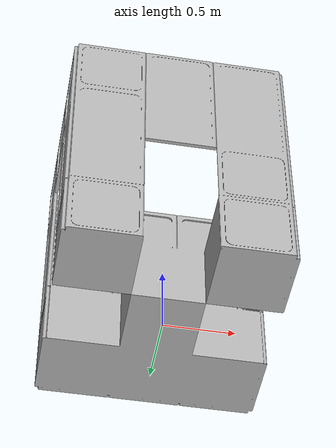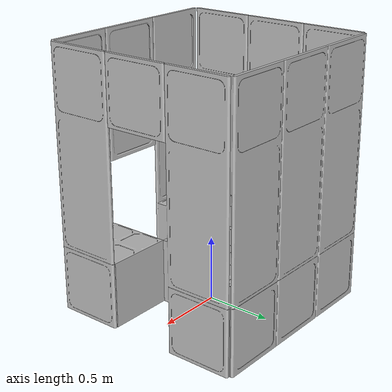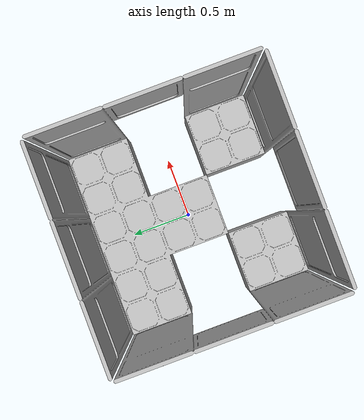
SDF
<?xml version="1.0" ?>
<sdf version="1.6">
  <model name="enclosure">
    <link name="enclosure_link">
      <visual name="enclosure_visual">
        <geometry>
          <mesh>
            <uri>enclosure/meshes/enclosure_visual.obj</uri>
          </mesh>
        </geometry>
      </visual>
      <collision name="box025013_collider_box">
        <pose>-0.7625 -0.0 1.75 0.0 0.0 0.0</pose>
        <geometry>
          <box>
            <size>0.025001 1.55 0.5</size>
          </box>
        </geometry>
      </collision>
      <collision name="box025013_collider_box.001">
        <pose>0.7625 -0.0 1.75 0.0 0.0 0.0</pose>
        <geometry>
          <box>
            <size>0.025 1.55 0.5</size>
          </box>
        </geometry>
      </collision>
      <collision name="box025013_collider_box.003">
        <pose>-0.0 -0.7625 1.499999 0.0 0.0 0.0</pose>
        <geometry>
          <box>
            <size>1.550001 0.025 1.000002</size>
          </box>
        </geometry>
      </collision>
      <collision name="box025003_collider_box">
        <pose>5.9e-05 0.51247 0.24996 0.0 -0.0 1.570796</pose>
        <geometry>
          <box>
            <size>0.524941 1.55 0.500077</size>
          </box>
        </geometry>
      </collision>
      <collision name="box025003_collider_box.001">
        <pose>0.51253 -0.51253 0.24996 0.0 -0.0 1.570796</pose>
        <geometry>
          <box>
            <size>0.525059 0.52506 0.500077</size>
          </box>
        </geometry>
      </collision>
      <collision name="box025020_collider_box">
        <pose>-0.51247 -0.51253 0.24996 0.0 -0.0 1.570796</pose>
        <geometry>
          <box>
            <size>0.525059 0.524941 0.500077</size>
          </box>
        </geometry>
      </collision>
      <collision name="box025003_collider_box.002">
        <pose>0.0 0.0 0.249999 0.0 0.0 0.0</pose>
        <geometry>
          <box>
            <size>0.5 0.5 0.499998</size>
          </box>
        </geometry>
      </collision>
      <collision name="box025013_collider_box.002">
        <pose>-0.512637 -0.7625 1.251 0.0 0.0 0.0</pose>
        <geometry>
          <box>
            <size>0.524728 0.025 1.497999</size>
          </box>
        </geometry>
      </collision>
      <collision name="box025013_collider_box.004">
        <pose>0.512668 -0.7625 1.251899 0.0 0.0 0.0</pose>
        <geometry>
          <box>
            <size>0.524664 0.025 1.496202</size>
          </box>
        </geometry>
      </collision>
      <collision name="box025003_collider_box.003">
        <pose>-0.7625 -0.512518 1.251 0.0 0.0 0.0</pose>
        <geometry>
          <box>
            <size>0.025 0.524965 1.497999</size>
          </box>
        </geometry>
      </collision>
      <collision name="box025003_collider_box.004">
        <pose>-0.7625 0.512527 1.251 0.0 0.0 0.0</pose>
        <geometry>
          <box>
            <size>0.025 0.524945 1.497999</size>
          </box>
        </geometry>
      </collision>
      <collision name="box025013_collider_box.005">
        <pose>0.7625 -0.512636 1.250213 0.0 0.0 0.0</pose>
        <geometry>
          <box>
            <size>0.025 0.524728 1.499575</size>
          </box>
        </geometry>
      </collision>
      <collision name="box025013_collider_box.006">
        <pose>0.7625 0.512768 1.251546 0.0 0.0 0.0</pose>
        <geometry>
          <box>
            <size>0.025 0.524463 1.496908</size>
          </box>
        </geometry>
      </collision>
      <collision name="box025003_collider_box.005">
        <pose>-0.0 0.761934 1.251 0.0 0.0 0.0</pose>
        <geometry>
          <box>
            <size>1.550001 0.026133 1.497999</size>
          </box>
        </geometry>
      </collision>
    </link>
  </model>
</sdf>
